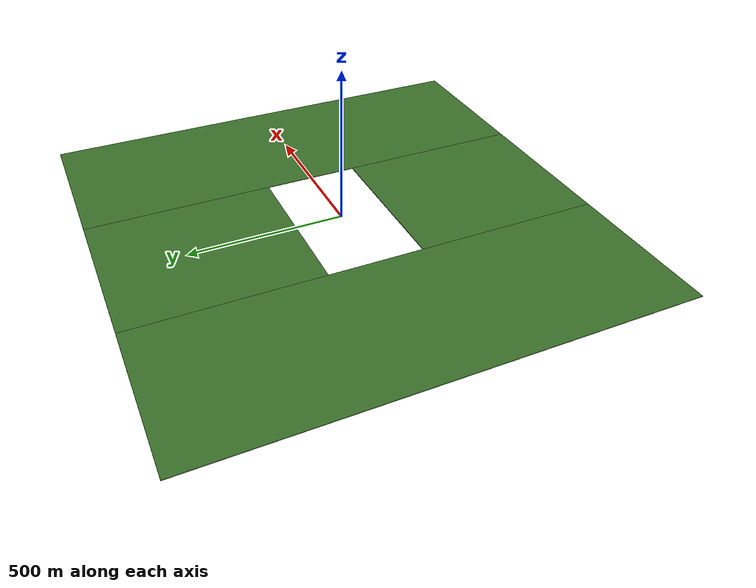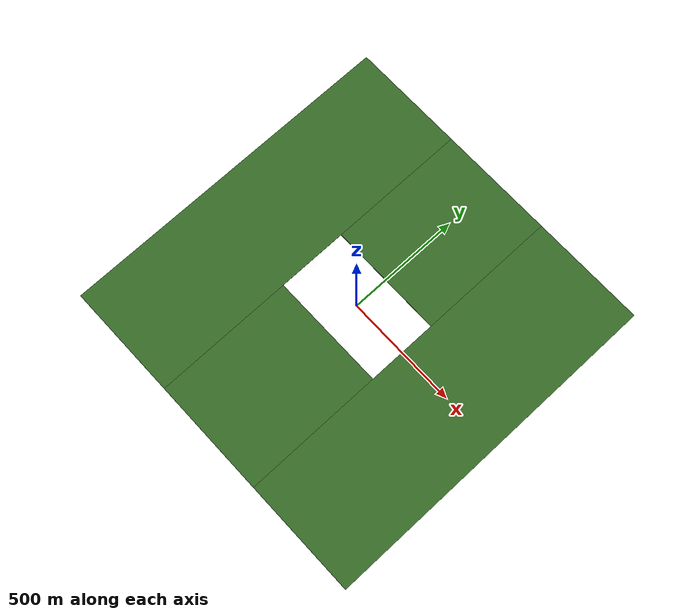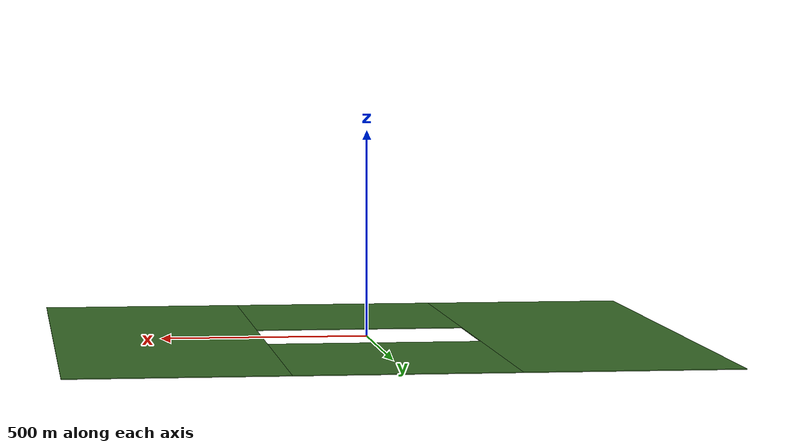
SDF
<?xml version="1.0"?>
<sdf version="1.9">
  <model name="dongpo_land_apron">
    <static>true</static>
    <link name="apron0">
      <visual name="v">
        <pose>-508.0 0.0 0.6 0 0 0</pose>
        <geometry><box><size>504.0 1520.0 2.0</size></box></geometry>
        <material>
          <ambient>0.18 0.36 0.13</ambient>
          <diffuse>0.24 0.46 0.17</diffuse>
        </material>
      </visual>
    </link>
    <link name="apron1">
      <visual name="v">
        <pose>508.0 0.0 0.6 0 0 0</pose>
        <geometry><box><size>504.0 1520.0 2.0</size></box></geometry>
        <material>
          <ambient>0.18 0.36 0.13</ambient>
          <diffuse>0.24 0.46 0.17</diffuse>
        </material>
      </visual>
    </link>
    <link name="apron2">
      <visual name="v">
        <pose>0.0 -456.8 0.6 0 0 0</pose>
        <geometry><box><size>512.0 606.5 2.0</size></box></geometry>
        <material>
          <ambient>0.18 0.36 0.13</ambient>
          <diffuse>0.24 0.46 0.17</diffuse>
        </material>
      </visual>
    </link>
    <link name="apron3">
      <visual name="v">
        <pose>0.0 456.8 0.6 0 0 0</pose>
        <geometry><box><size>512.0 606.5 2.0</size></box></geometry>
        <material>
          <ambient>0.18 0.36 0.13</ambient>
          <diffuse>0.24 0.46 0.17</diffuse>
        </material>
      </visual>
    </link>
  </model>
</sdf>
